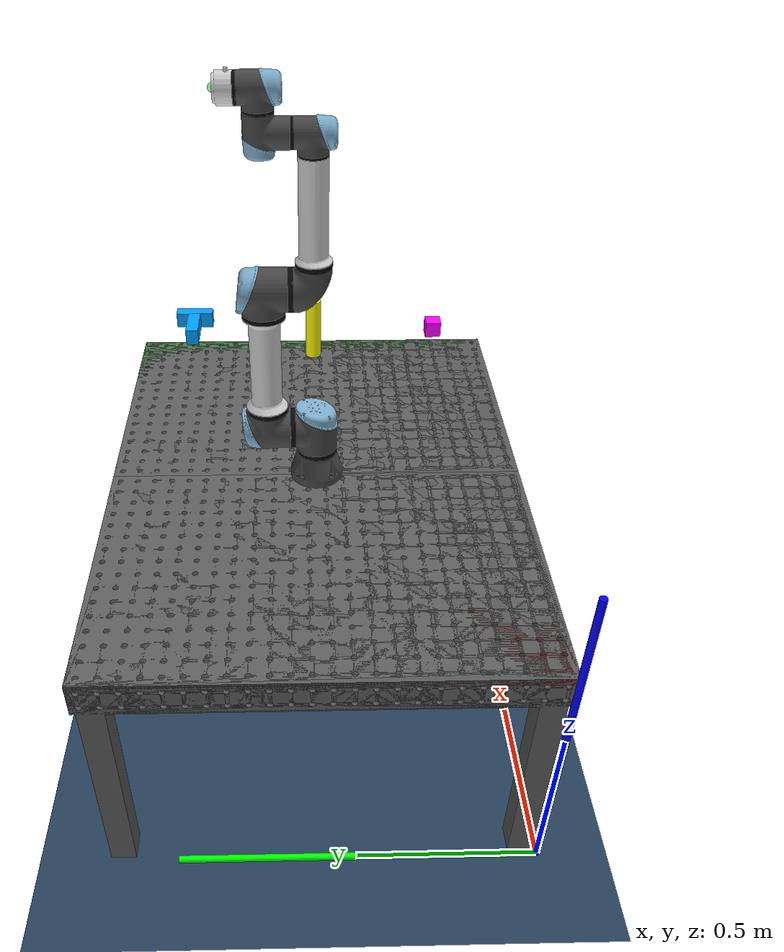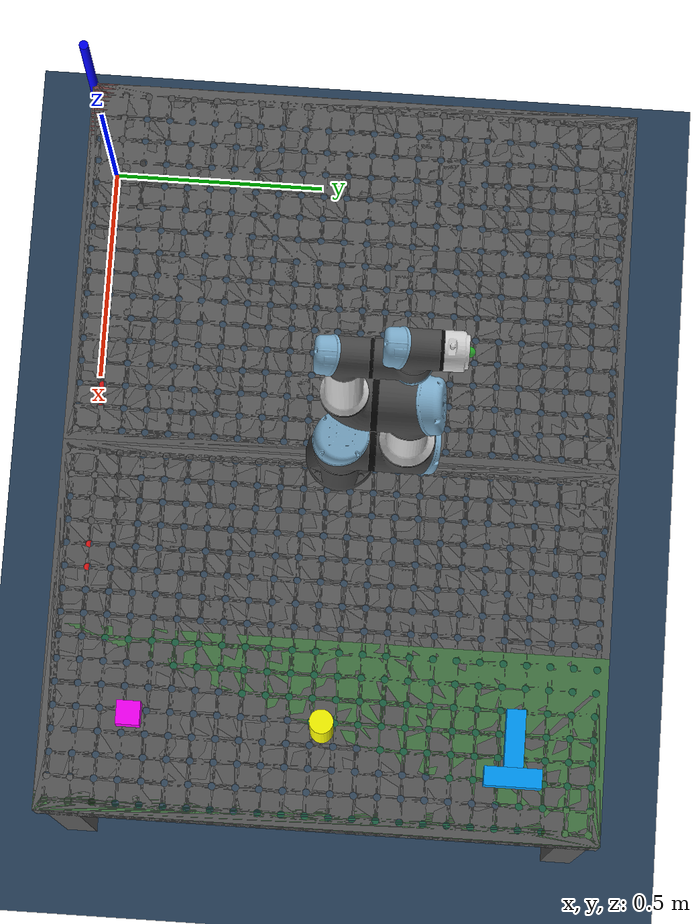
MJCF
<mujoco model="scene">

    <compiler angle="radian" autolimits="true" />
    <option timestep="0.002" integrator="implicitfast" solver="PGS" gravity="0 0 -9.82"
            cone="elliptic">
    </option>

    <include file="../universal_robots_ur5e/ur5e.xml" />
    <include file="../robotiq_2f85/2f85.xml" />

    <statistic center="0.3 0 0.3" extent="0.8" meansize="0.08" />

    <visual>
        <headlight diffuse="0.6 0.6 0.6" ambient="0.1 0.1 0.1" specular="0 0 0" />
        <rgba haze="0.15 0.25 0.35 1" />
        <global azimuth="120" elevation="-20" />
    </visual>

    <asset>
        <texture type="skybox" builtin="gradient" rgb1="0.3 0.5 0.7" rgb2="0 0 0" width="512"
                 height="3072" />
        <texture type="2d" name="groundplane" builtin="checker" mark="edge" rgb1="0.2 0.3 0.4"
                 rgb2="0.1 0.2 0.3" markrgb="0.8 0.8 0.8" width="300" height="300" />
        <material name="groundplane" texture="groundplane" texuniform="true" texrepeat="5 5"
                  reflectance="0.2" />

        <!--meshes-->
        <mesh name ="table" file="../table/sigmund_table.stl" scale= "1 1 1"/>
    </asset>

    <worldbody>
        <light pos="0 0 1.5" dir="0 0 -1" directional="true" />
		<geom name="floor" size="0 0 0.05" type="plane" material="groundplane" />
		<geom name="x-aixs" group="2" type="cylinder" contype="0" conaffinity="0"
			fromto="0 0 0 1 0 0" size="0.01" rgba="1 0 0 1" />
		<geom name="y-aixs" group="2" type="cylinder" contype="0" conaffinity="0"
			fromto="0 0 0 0 1 0" size="0.01" rgba="0 1 0 1" />
		<geom name="z-aixs" group="2" type="cylinder" contype="0" conaffinity="0"
			fromto="0 0 0 0 0 1" size="0.01" rgba="0 0 1 1" />

		<camera name="cam" pos="1.0 0.6 2.0" xyaxes="0 -1 0 1 0 0.5" mode="fixed" />

		<body name="mocap" mocap="true" pos="0.8 0.6 0.74">
			<geom name="mocap" type="sphere" size="0.000001"/>
		</body>

		<body name="Cylinder" pos="1.4 0.6 0.9" quat="1 0 0 0">
			<joint name="Cylinder" type="free" />
			<geom name="Cylinder" type="cylinder" size="0.025 0.1" rgba="1 1 0 1" condim="6" solref="0.0000000001 1"/>
		</body>

		<body name="Box" pos="1.4 0.2 0.9" quat="1 0 0 0">
			<joint name="Box" type="free" />
			<geom name="Box" type="box" size="0.025 0.025 0.025" rgba="1 0 1 1" condim="6"/>
		</body>

		<body name="T_block" pos="1.4 1 0.9" quat="1 0 0 0">
			<joint name="T_block" type="free" />
			<geom name="T_block_pt1" type="box" size="0.06 0.02 0.025" rgba="0 0.62 1 1" condim="6"/>
			<geom name="T_block_pt2" type="box" size="0.02 0.06 0.025" pos="0.08 0 0" rgba="0 0.62 1 1" condim="6"/>
		</body>

		<!--Zones-->
		<body name="zone_pickup" pos="1.4 0.6 0.73" quat="1 0 0 0">
			<geom name="zone_pickup" type="box" size="0.2 0.6 0.01" rgba="0 1 0 0.1" contype="0" conaffinity="0"/>
		</body>
		<body name="zone_drop" pos="0.2 0.2 0.73" quat="1 0 0 0">
			<geom name="zone_drop" type="box" size="0.2 0.2 0.01" rgba="1 0 0 0.1" contype="0" conaffinity="0"/>
		</body>

        <!--table -->
		<body name = "table1" euler="0 0 0" pos= "0.8 0 0.74" >
		  <geom name = "table1" type="mesh" mesh="table" group="2" rgba="0.35 0.35 0.35 1" mass="0" contype="0" conaffinity="0"/>
		</body>
		<body name = "table2" euler="0 0 0" pos= "1.6 0 0.74" >
		  <geom name = "table2" type="mesh" mesh="table" group="2" rgba="0.35 0.35 0.35 1" mass="0" contype="0" conaffinity="0"/>
		</body>

		<body name="simple_table" pos="0.8 0.6 0.69" quat="1 0 0 0">
			<geom name="simple_table" type="box" size="0.8 0.6 0.05" rgba="0.5 0.5 0.5 0.1"/>
		</body>
    </worldbody>

    <contact>
		<exclude body1="flange" body2="2f85_base" />
		<exclude body1="wrist_3_link" body2="2f85_base" />
		<exclude body1="wrist_2_link" body2="2f85_base" />
	</contact>

	<equality>
		<weld name="attach" body1="flange" body2="2f85_base" active="false" />
		<weld name="attach_mocap" body1="mocap" body2="ur5e_base" active="false" />
	</equality>

</mujoco>

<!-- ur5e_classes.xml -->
<mujocoinclude>
	<default class="ur5e">
		<material specular="0.5" shininess="0.25" />
		<joint axis="0 1 0" range="-6.28319 6.28319" armature="0.1" />
		<general gaintype="fixed" biastype="affine" ctrlrange="-6.2831 6.2831" gainprm="2000"
			biasprm="0 -2000 -400" forcerange="-150 150" />
		<default class="size3">
			<default class="size3_limited">
				<joint range="-3.1415 3.1415" />
				<general ctrlrange="-3.1415 3.1415" />
			</default>
		</default>
		<default class="size1">
			<general gainprm="500" biasprm="0 -500 -100" forcerange="-28 28" />
		</default>
		<default class="visual">
			<geom type="mesh" contype="0" conaffinity="0" group="2" />
		</default>
		<default class="collision">
			<geom type="capsule" group="3" />
			<default class="eef_collision">
				<geom type="cylinder" />
			</default>
		</default>
		<site size="0.001" rgba="0.5 0.5 0.5 0.3" group="4" />
	</default>
</mujocoinclude>

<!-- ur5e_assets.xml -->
<mujocoinclude>
	<material name="black" rgba="0.033 0.033 0.033 1" />
	<material name="jointgray" rgba="0.278 0.278 0.278 1" />
	<material name="linkgray" rgba="0.82 0.82 0.82 1" />
	<material name="urblue" rgba="0.49 0.678 0.8 1" />

	<mesh file="../universal_robots_ur5e/assets/base_0.obj" />
	<mesh file="../universal_robots_ur5e/assets/base_1.obj" />
	<mesh file="../universal_robots_ur5e/assets/shoulder_0.obj" />
	<mesh file="../universal_robots_ur5e/assets/shoulder_1.obj" />
	<mesh file="../universal_robots_ur5e/assets/shoulder_2.obj" />
	<mesh file="../universal_robots_ur5e/assets/upperarm_0.obj" />
	<mesh file="../universal_robots_ur5e/assets/upperarm_1.obj" />
	<mesh file="../universal_robots_ur5e/assets/upperarm_2.obj" />
	<mesh file="../universal_robots_ur5e/assets/upperarm_3.obj" />
	<mesh file="../universal_robots_ur5e/assets/forearm_0.obj" />
	<mesh file="../universal_robots_ur5e/assets/forearm_1.obj" />
	<mesh file="../universal_robots_ur5e/assets/forearm_2.obj" />
	<mesh file="../universal_robots_ur5e/assets/forearm_3.obj" />
	<mesh file="../universal_robots_ur5e/assets/wrist1_0.obj" />
	<mesh file="../universal_robots_ur5e/assets/wrist1_1.obj" />
	<mesh file="../universal_robots_ur5e/assets/wrist1_2.obj" />
	<mesh file="../universal_robots_ur5e/assets/wrist2_0.obj" />
	<mesh file="../universal_robots_ur5e/assets/wrist2_1.obj" />
	<mesh file="../universal_robots_ur5e/assets/wrist2_2.obj" />
	<mesh file="../universal_robots_ur5e/assets/wrist3.obj" />
</mujocoinclude>

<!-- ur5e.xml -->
<mujoco model="ur5e">

  <default>
    <include file="../universal_robots_ur5e/ur5e_classes.xml"/>
  </default>

  <asset>
    <include file="../universal_robots_ur5e/ur5e_assets.xml" />
  </asset>

  <worldbody>
    <light name="spotlight" mode="targetbodycom" target="wrist_2_link" pos="0 -1 2"/>
    <body name="ur5e_base" pos="0.8 0.6 0.745" quat="1 0 0 0" childclass="ur5e">
      <inertial mass="4.0" pos="0 0 0" diaginertia="0.00443333156 0.00443333156 0.0072"/>
      <geom mesh="base_0" material="black" class="visual"/>
      <geom mesh="base_1" material="jointgray" class="visual"/>
      <body name="shoulder_link" pos="0 0 0.163">
        <inertial mass="3.7" pos="0 0 0" diaginertia="0.0102675 0.0102675 0.00666"/>
        <joint name="shoulder_pan_joint" class="size3" axis="0 0 1"/>
        <geom mesh="shoulder_0" material="urblue" class="visual"/>
        <geom mesh="shoulder_1" material="black" class="visual"/>
        <geom mesh="shoulder_2" material="jointgray" class="visual"/>
        <geom class="collision" size="0.06 0.06" pos="0 0 -0.04"/>
        <body name="upper_arm_link" pos="0 0.138 0" quat="1 0 0 0">
          <inertial mass="8.393" pos="0 0 0.2125" diaginertia="0.133886 0.133886 0.0151074"/>
          <joint name="shoulder_lift_joint" class="size3"/>
          <geom mesh="upperarm_0" material="linkgray" class="visual"/>
          <geom mesh="upperarm_1" material="black" class="visual"/>
          <geom mesh="upperarm_2" material="jointgray" class="visual"/>
          <geom mesh="upperarm_3" material="urblue" class="visual"/>
          <geom class="collision" pos="0 -0.04 0" quat="1 1 0 0" size="0.06 0.06"/>
          <geom class="collision" size="0.05 0.2" pos="0 0 0.2"/>
          <body name="forearm_link" pos="0 -0.131 0.425">
            <inertial mass="2.275" pos="0 0 0.196" diaginertia="0.0311796 0.0311796 0.004095"/>
            <joint name="elbow_joint" class="size3_limited"/>
            <geom mesh="forearm_0" material="urblue" class="visual"/>
            <geom mesh="forearm_1" material="linkgray" class="visual"/>
            <geom mesh="forearm_2" material="black" class="visual"/>
            <geom mesh="forearm_3" material="jointgray" class="visual"/>
            <geom class="collision" pos="0 0.08 0" quat="1 1 0 0" size="0.055 0.06"/>
            <geom class="collision" size="0.038 0.19" pos="0 0 0.2"/>
            <body name="wrist_1_link" pos="0 0 0.392" quat="1 0 0 0">
              <inertial mass="1.219" pos="0 0.127 0" diaginertia="0.0025599 0.0025599 0.0021942"/>
              <joint name="wrist_1_joint" class="size1"/>
              <geom mesh="wrist1_0" material="black" class="visual"/>
              <geom mesh="wrist1_1" material="urblue" class="visual"/>
              <geom mesh="wrist1_2" material="jointgray" class="visual"/>
              <geom class="collision" pos="0 0.05 0" quat="1 1 0 0" size="0.04 0.07"/>
              <body name="wrist_2_link" pos="0 0.127 0">
                <inertial mass="1.219" pos="0 0 0.1" diaginertia="0.0025599 0.0025599 0.0021942"/>
                <joint name="wrist_2_joint" axis="0 0 1" class="size1"/>
                <geom mesh="wrist2_0" material="black" class="visual"/>
                <geom mesh="wrist2_1" material="urblue" class="visual"/>
                <geom mesh="wrist2_2" material="jointgray" class="visual"/>
                <geom class="collision" size="0.04 0.06" pos="0 0 0.04"/>
                <geom class="collision" pos="0 0.02 0.1" quat="1 1 0 0" size="0.04 0.04"/>
                <body name="wrist_3_link" pos="0 0 0.1">
                  <inertial mass="0.1889" pos="0 0.0771683 0" quat="1 0 0 1"
                    diaginertia="0.000132134 9.90863e-05 9.90863e-05"/>
                  <joint name="wrist_3_joint" class="size1"/>
                  <geom material="linkgray" mesh="wrist3" class="visual"/>

                    <body name="flange" pos="0 0.1 0" quat="1 -1 0 0">
                      <site name="tcp" pos="0 0 0" size="0.01" rgba="0 1 0 0.5" group="2" />
                    </body>
                </body>
              </body>
            </body>
          </body>
        </body>
      </body>
    </body>
  </worldbody>

  <actuator>
    <general class="size3" name="shoulder_pan" joint="shoulder_pan_joint"/>
    <general class="size3" name="shoulder_lift" joint="shoulder_lift_joint"/>
    <general class="size3_limited" name="elbow" joint="elbow_joint"/>
    <general class="size1" name="wrist_1" joint="wrist_1_joint"/>
    <general class="size1" name="wrist_2" joint="wrist_2_joint"/>
    <general class="size1" name="wrist_3" joint="wrist_3_joint"/>
  </actuator>

</mujoco>

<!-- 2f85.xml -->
<mujoco model="robotiq_2f85">

  <option cone="elliptic" impratio="10"/>

  <asset>
    <material name="metal" rgba="0.58 0.58 0.58 1"/>
    <material name="silicone" rgba="0.1882 0.1882 0.1882 1"/>
    <material name="gray" rgba="0.4627 0.4627 0.4627 1"/>

    <mesh class="2f85" file="../robotiq_2f85/assets/base_mount.stl"/>
    <mesh class="2f85" file="../robotiq_2f85/assets/base.stl"/>
    <mesh class="2f85" file="../robotiq_2f85/assets/driver.stl"/>
    <mesh class="2f85" file="../robotiq_2f85/assets/coupler.stl"/>
    <mesh class="2f85" file="../robotiq_2f85/assets/follower.stl"/>
    <mesh class="2f85" file="../robotiq_2f85/assets/pad.stl"/>
    <mesh class="2f85" file="../robotiq_2f85/assets/silicone_pad.stl"/>
    <mesh class="2f85" file="../robotiq_2f85/assets/spring_link.stl"/>
  </asset>

  <default>
    <default class="2f85">
      <mesh scale="0.001 0.001 0.001"/>
      <general biastype="affine"/>

      <joint axis="1 0 0"/>
      <default class="driver">
        <joint range="0 0.8" armature="0.005" damping="0.1" solimplimit="0.95 0.99 0.001" solreflimit="0.005 1"/>
      </default>
      <default class="follower">
        <joint range="-0.872664 0.872664" armature="0.001" pos="0 -0.018 0.0065" solimplimit="0.95 0.99 0.001" solreflimit="0.005 1"/>
      </default>
      <default class="spring_link">
        <joint range="-0.29670597283 0.8" armature="0.001" stiffness="0.05" springref="2.62" damping="0.00125"/>
      </default>
      <default class="coupler">
        <joint range="-1.57 0" armature="0.001" solimplimit="0.95 0.99 0.001" solreflimit="0.005 1"/>
      </default>

      <default class="visual2">
        <geom type="mesh" contype="0" conaffinity="0" group="2"/>
      </default>
      <default class="collision2">
        <geom type="mesh" group="3"/>
        <default class="pad_box1">
          <geom mass="0" type="box" pos="0 -0.0026 0.028125" size="0.011 0.004 0.009375" friction="0.7"
            solimp="0.95 0.99 0.001" solref="0.004 1" priority="1" rgba="0.55 0.55 0.55 1"/>
        </default>
        <default class="pad_box2">
          <geom mass="0" type="box" pos="0 -0.0026 0.009375" size="0.011 0.004 0.009375" friction="0.6"
            solimp="0.95 0.99 0.001" solref="0.004 1" priority="1" rgba="0.45 0.45 0.45 1"/>
        </default>
      </default>
    </default>
  </default>

  <worldbody>
    <body name="2f85_base" pos="0 0 0.007" childclass="2f85">
      <joint name="2f85" type="free" />
      <geom class="visual2" mesh="base_mount" material="black"/>
      <geom class="collision2" mesh="base_mount"/>
      <body name="base" pos="0 0 0.0038" quat="1 0 0 -1">
        <inertial mass="0.777441" pos="0 -2.70394e-05 0.0354675" quat="1 -0.00152849 0 0"
          diaginertia="0.000260285 0.000225381 0.000152708"/>
        <geom class="visual2" mesh="base" material="black"/>
        <geom class="collision2" mesh="base"/>
        <site name="pinch" pos="0 0 0.145" type="sphere" group="5" rgba="0.9 0.9 0.9 1" size="0.005"/>
        <!-- Right-hand side 4-bar linkage -->
        <body name="right_driver" pos="0 0.0306011 0.054904">
          <inertial mass="0.00899563" pos="2.96931e-12 0.0177547 0.00107314" quat="0.681301 0.732003 0 0"
            diaginertia="1.72352e-06 1.60906e-06 3.22006e-07"/>
          <joint name="right_driver_joint" class="driver"/>
          <geom class="visual2" mesh="driver" material="gray"/>
          <geom class="collision2" mesh="driver"/>
          <body name="right_coupler" pos="0 0.0315 -0.0041">
            <inertial mass="0.0140974" pos="0 0.00301209 0.0232175" quat="0.705636 -0.0455904 0.0455904 0.705636"
              diaginertia="4.16206e-06 3.52216e-06 8.88131e-07"/>
            <joint name="right_coupler_joint" class="coupler"/>
            <geom class="visual2" mesh="coupler" material="black"/>
            <geom class="collision2" mesh="coupler"/>
          </body>
        </body>
        <body name="right_spring_link" pos="0 0.0132 0.0609">
          <inertial mass="0.0221642" pos="-8.65005e-09 0.0181624 0.0212658" quat="0.663403 -0.244737 0.244737 0.663403"
            diaginertia="8.96853e-06 6.71733e-06 2.63931e-06"/>
          <joint name="right_spring_link_joint" class="spring_link"/>
          <geom class="visual2" mesh="spring_link" material="black"/>
          <geom class="collision2" mesh="spring_link"/>
          <body name="right_follower" pos="0 0.055 0.0375">
            <inertial mass="0.0125222" pos="0 -0.011046 0.0124786" quat="1 0.1664 0 0"
              diaginertia="2.67415e-06 2.4559e-06 6.02031e-07"/>
            <joint name="right_follower_joint" class="follower"/>
            <geom class="visual2" mesh="follower" material="black"/>
            <geom class="collision2" mesh="follower"/>
            <body name="right_pad" pos="0 -0.0189 0.01352">
              <geom class="pad_box1" name="right_pad1"/>
              <geom class="pad_box2" name="right_pad2"/>
              <inertial mass="0.0035" pos="0 -0.0025 0.0185" quat="0.707107 0 0 0.707107"
                diaginertia="4.73958e-07 3.64583e-07 1.23958e-07"/>
              <geom class="visual2" mesh="pad"/>
              <body name="right_silicone_pad">
                <geom class="visual2" mesh="silicone_pad" material="black"/>
              </body>
            </body>
          </body>
        </body>
        <!-- Left-hand side 4-bar linkage -->
        <body name="left_driver" pos="0 -0.0306011 0.054904" quat="0 0 0 1">
          <inertial mass="0.00899563" pos="0 0.0177547 0.00107314" quat="0.681301 0.732003 0 0"
            diaginertia="1.72352e-06 1.60906e-06 3.22006e-07"/>
          <joint name="left_driver_joint" class="driver"/>
          <geom class="visual2" mesh="driver" material="gray"/>
          <geom class="collision2" mesh="driver"/>
          <body name="left_coupler" pos="0 0.0315 -0.0041">
            <inertial mass="0.0140974" pos="0 0.00301209 0.0232175" quat="0.705636 -0.0455904 0.0455904 0.705636"
              diaginertia="4.16206e-06 3.52216e-06 8.88131e-07"/>
            <joint name="left_coupler_joint" class="coupler"/>
            <geom class="visual2" mesh="coupler" material="black"/>
            <geom class="collision2" mesh="coupler"/>
          </body>
        </body>
        <body name="left_spring_link" pos="0 -0.0132 0.0609" quat="0 0 0 1">
          <inertial mass="0.0221642" pos="-8.65005e-09 0.0181624 0.0212658" quat="0.663403 -0.244737 0.244737 0.663403"
            diaginertia="8.96853e-06 6.71733e-06 2.63931e-06"/>
          <joint name="left_spring_link_joint" class="spring_link"/>
          <geom class="visual2" mesh="spring_link" material="black"/>
          <geom class="collision2" mesh="spring_link"/>
          <body name="left_follower" pos="0 0.055 0.0375">
            <inertial mass="0.0125222" pos="0 -0.011046 0.0124786" quat="1 0.1664 0 0"
              diaginertia="2.67415e-06 2.4559e-06 6.02031e-07"/>
            <joint name="left_follower_joint" class="follower"/>
            <geom class="visual2" mesh="follower" material="black"/>
            <geom class="collision2" mesh="follower"/>
            <body name="left_pad" pos="0 -0.0189 0.01352">
              <geom class="pad_box1" name="left_pad1"/>
              <geom class="pad_box2" name="left_pad2"/>
              <inertial mass="0.0035" pos="0 -0.0025 0.0185" quat="1 0 0 1"
                diaginertia="4.73958e-07 3.64583e-07 1.23958e-07"/>
              <geom class="visual2" mesh="pad"/>
              <body name="left_silicone_pad">
                <geom class="visual2" mesh="silicone_pad" material="black"/>
              </body>
            </body>
          </body>
        </body>
      </body>
    </body>
  </worldbody>

  <contact>
    <exclude body1="base" body2="left_driver"/>
    <exclude body1="base" body2="right_driver"/>
    <exclude body1="base" body2="left_spring_link"/>
    <exclude body1="base" body2="right_spring_link"/>
    <exclude body1="right_coupler" body2="right_follower"/>
    <exclude body1="left_coupler" body2="left_follower"/>
  </contact>

  <tendon>
    <fixed name="split">
      <joint joint="right_driver_joint" coef="0.5"/>
      <joint joint="left_driver_joint" coef="0.5"/>
    </fixed>
  </tendon>

  <equality>
    <connect anchor="0 0 0" body1="right_follower" body2="right_coupler" solimp="0.95 0.99 0.001" solref="0.005 1"/>
    <connect anchor="0 0 0" body1="left_follower" body2="left_coupler" solimp="0.95 0.99 0.001" solref="0.005 1"/>
    <joint joint1="right_driver_joint" joint2="left_driver_joint" polycoef="0 1 0 0 0" solimp="0.95 0.99 0.001"
      solref="0.005 1"/>
  </equality>

  <actuator>
    <general class="2f85" name="fingers_actuator" tendon="split" forcerange="-5 5" ctrlrange="0 255"
      gainprm="0.3137255 0 0" biasprm="0 -100 -10"/>
  </actuator>
</mujoco>
